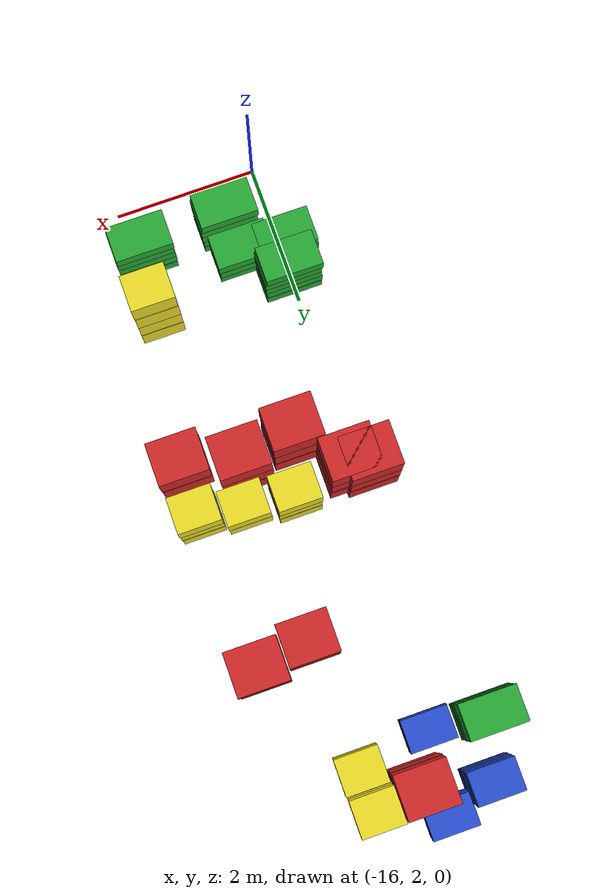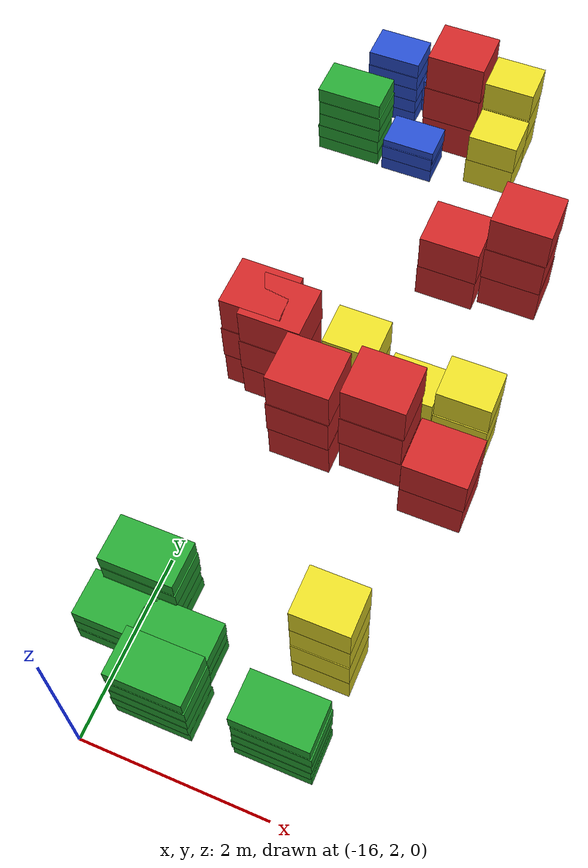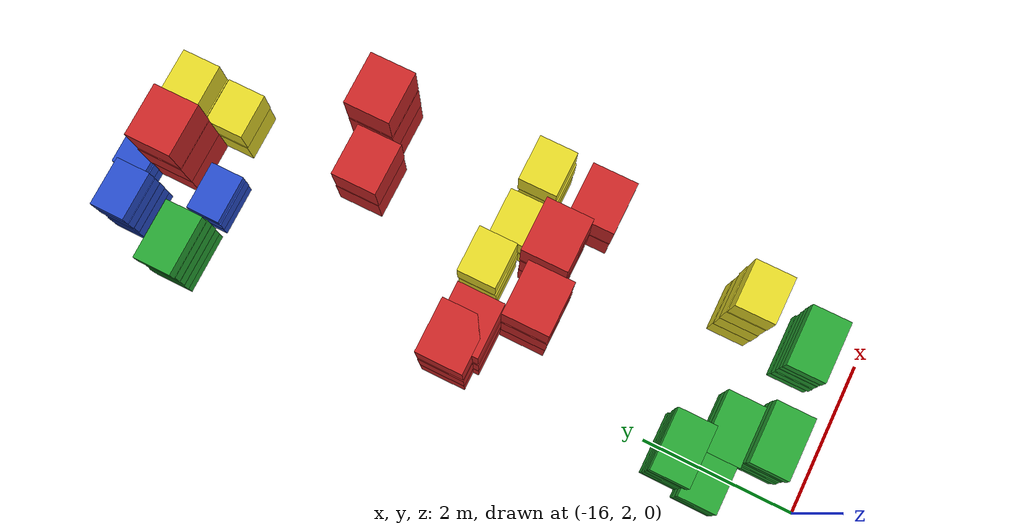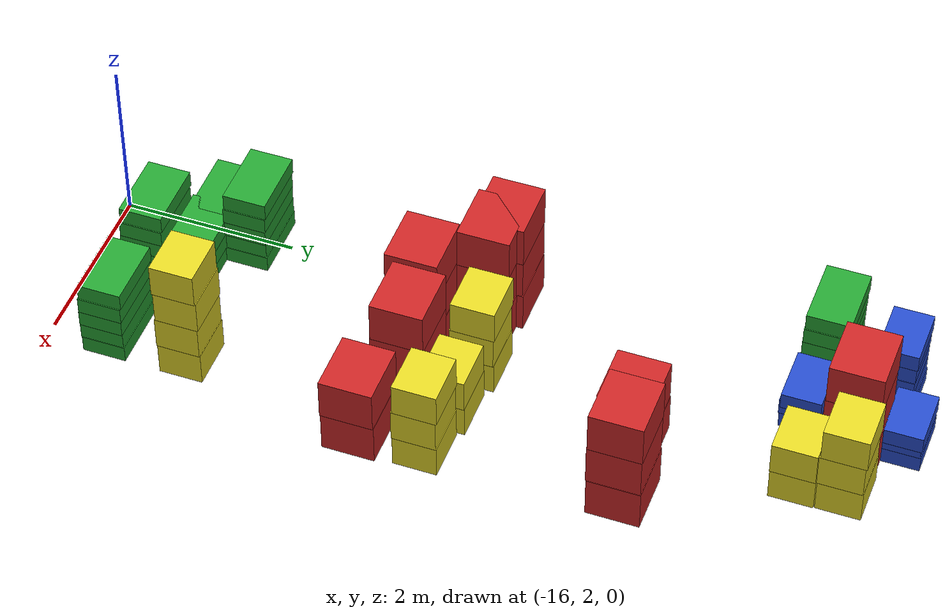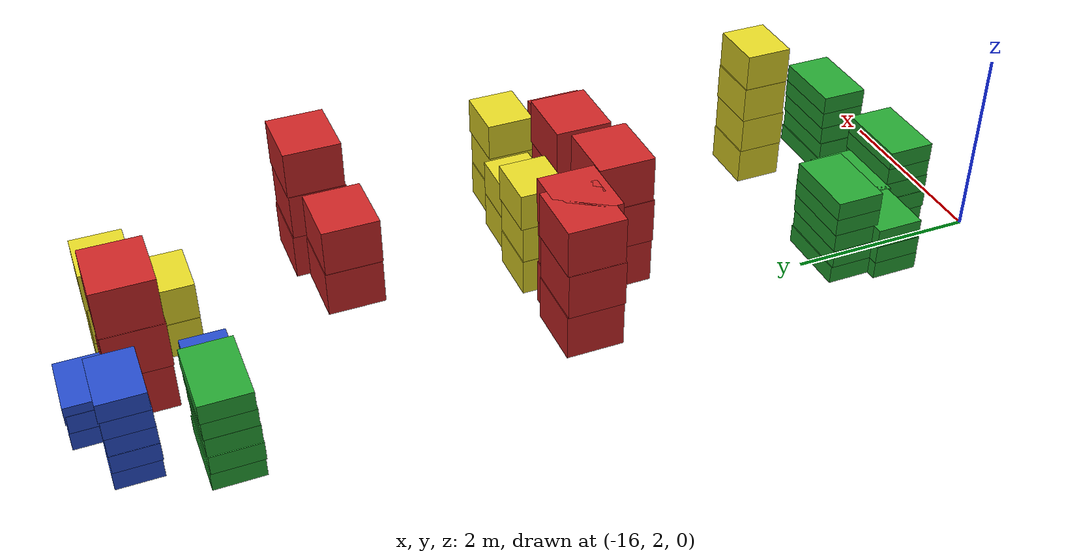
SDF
<sdf version="1.6">
 <world name="default">
  <include><uri>model://sun</uri></include>
  <model name="baggage_D_x5_3">
   <model name="baggage_D_0">
    <static>1</static>
    <link name="link">
     <collision name="collision"><geometry><box><size>0.8 0.5 0.2</size></box></geometry></collision>
     <visual name="visual">
      <geometry><box><size>0.8 0.5 0.2</size></box></geometry>
      <material>
       <script><uri>file://media/materials/scripts/gazebo.material</uri><name>Gazebo/Green</name></script>
      </material>
     </visual>
    </link>
    <pose>0 0 0.1 0 -0 0</pose>
   </model>
   <model name="baggage_D_1">
    <static>1</static>
    <link name="link">
     <collision name="collision"><geometry><box><size>0.8 0.5 0.2</size></box></geometry></collision>
     <visual name="visual">
      <geometry><box><size>0.8 0.5 0.2</size></box></geometry>
      <material>
       <script><uri>file://media/materials/scripts/gazebo.material</uri><name>Gazebo/Green</name></script>
      </material>
     </visual>
    </link>
    <pose>-0.0065 -0.0092 0.3 0 -0 0</pose>
   </model>
   <model name="baggage_D_2">
    <static>1</static>
    <link name="link">
     <collision name="collision"><geometry><box><size>0.8 0.5 0.2</size></box></geometry></collision>
     <visual name="visual">
      <geometry><box><size>0.8 0.5 0.2</size></box></geometry>
      <material>
       <script><uri>file://media/materials/scripts/gazebo.material</uri><name>Gazebo/Green</name></script>
      </material>
     </visual>
    </link>
    <pose>0.005 -0.0052 0.5 0 -0 0</pose>
   </model>
   <model name="baggage_D_3">
    <static>1</static>
    <link name="link">
     <collision name="collision"><geometry><box><size>0.8 0.5 0.2</size></box></geometry></collision>
     <visual name="visual">
      <geometry><box><size>0.8 0.5 0.2</size></box></geometry>
      <material>
       <script><uri>file://media/materials/scripts/gazebo.material</uri><name>Gazebo/Green</name></script>
      </material>
     </visual>
    </link>
    <pose>0.0074 0.0002 0.7 0 -0 0</pose>
   </model>
   <model name="baggage_D_4">
    <static>1</static>
    <link name="link">
     <collision name="collision"><geometry><box><size>0.8 0.5 0.2</size></box></geometry></collision>
     <visual name="visual">
      <geometry><box><size>0.8 0.5 0.2</size></box></geometry>
      <material>
       <script><uri>file://media/materials/scripts/gazebo.material</uri><name>Gazebo/Green</name></script>
      </material>
     </visual>
    </link>
    <pose>-0.006 0.0081 0.9 0 -0 0</pose>
   </model>
   <pose>-14.1762 2.70446 0 0 -0 0</pose>
  </model>
  <model name="baggage_D_x5_5">
   <model name="baggage_D_0">
    <static>1</static>
    <link name="link">
     <collision name="collision"><geometry><box><size>0.8 0.5 0.2</size></box></geometry></collision>
     <visual name="visual">
      <geometry><box><size>0.8 0.5 0.2</size></box></geometry>
      <material>
       <script><uri>file://media/materials/scripts/gazebo.material</uri><name>Gazebo/Green</name></script>
      </material>
     </visual>
    </link>
    <pose>0 0 0.1 0 -0 0</pose>
   </model>
   <model name="baggage_D_1">
    <static>1</static>
    <link name="link">
     <collision name="collision"><geometry><box><size>0.8 0.5 0.2</size></box></geometry></collision>
     <visual name="visual">
      <geometry><box><size>0.8 0.5 0.2</size></box></geometry>
      <material>
       <script><uri>file://media/materials/scripts/gazebo.material</uri><name>Gazebo/Green</name></script>
      </material>
     </visual>
    </link>
    <pose>-0.0065 -0.0092 0.3 0 -0 0</pose>
   </model>
   <model name="baggage_D_2">
    <static>1</static>
    <link name="link">
     <collision name="collision"><geometry><box><size>0.8 0.5 0.2</size></box></geometry></collision>
     <visual name="visual">
      <geometry><box><size>0.8 0.5 0.2</size></box></geometry>
      <material>
       <script><uri>file://media/materials/scripts/gazebo.material</uri><name>Gazebo/Green</name></script>
      </material>
     </visual>
    </link>
    <pose>0.005 -0.0052 0.5 0 -0 0</pose>
   </model>
   <model name="baggage_D_3">
    <static>1</static>
    <link name="link">
     <collision name="collision"><geometry><box><size>0.8 0.5 0.2</size></box></geometry></collision>
     <visual name="visual">
      <geometry><box><size>0.8 0.5 0.2</size></box></geometry>
      <material>
       <script><uri>file://media/materials/scripts/gazebo.material</uri><name>Gazebo/Green</name></script>
      </material>
     </visual>
    </link>
    <pose>0.0074 0.0002 0.7 0 -0 0</pose>
   </model>
   <model name="baggage_D_4">
    <static>1</static>
    <link name="link">
     <collision name="collision"><geometry><box><size>0.8 0.5 0.2</size></box></geometry></collision>
     <visual name="visual">
      <geometry><box><size>0.8 0.5 0.2</size></box></geometry>
      <material>
       <script><uri>file://media/materials/scripts/gazebo.material</uri><name>Gazebo/Green</name></script>
      </material>
     </visual>
    </link>
    <pose>-0.006 0.0081 0.9 0 -0 0</pose>
   </model>
   <pose>-15.399 2.6424 0 0 -0 0</pose>
  </model>
  <model name="baggage_A_x3_7">
   <model name="baggage_A_0">
    <static>1</static>
    <link name="link">
     <collision name="collision"><geometry><box><size>0.7 0.6 0.5</size></box></geometry></collision>
     <visual name="visual">
      <geometry><box><size>0.7 0.6 0.5</size></box></geometry>
      <material>
       <script><uri>file://media/materials/scripts/gazebo.material</uri><name>Gazebo/Red</name></script>
      </material>
     </visual>
    </link>
    <pose>0 0 0.25 0 -0 0</pose>
   </model>
   <model name="baggage_A_1">
    <static>1</static>
    <link name="link">
     <collision name="collision"><geometry><box><size>0.7 0.6 0.5</size></box></geometry></collision>
     <visual name="visual">
      <geometry><box><size>0.7 0.6 0.5</size></box></geometry>
      <material>
       <script><uri>file://media/materials/scripts/gazebo.material</uri><name>Gazebo/Red</name></script>
      </material>
     </visual>
    </link>
    <pose>-0.006 -0.0077 0.75 0 -0 0</pose>
   </model>
   <model name="baggage_A_2">
    <static>1</static>
    <link name="link">
     <collision name="collision"><geometry><box><size>0.7 0.6 0.5</size></box></geometry></collision>
     <visual name="visual">
      <geometry><box><size>0.7 0.6 0.5</size></box></geometry>
      <material>
       <script><uri>file://media/materials/scripts/gazebo.material</uri><name>Gazebo/Red</name></script>
      </material>
     </visual>
    </link>
    <pose>0.0045 0.0005 1.25 0 -0 0</pose>
   </model>
   <pose>-16.0714 6.55606 0 0 -0 0</pose>
  </model>
  <model name="baggage_C_x4_0">
   <model name="baggage_C_0">
    <static>1</static>
    <link name="link">
     <collision name="collision"><geometry><box><size>0.6 0.5 0.4</size></box></geometry></collision>
     <visual name="visual">
      <geometry><box><size>0.6 0.5 0.4</size></box></geometry>
      <material>
       <script><uri>file://media/materials/scripts/gazebo.material</uri><name>Gazebo/Yellow</name></script>
      </material>
     </visual>
    </link>
    <pose>0 0 0.2 0 -0 0</pose>
   </model>
   <model name="baggage_C_1">
    <static>1</static>
    <link name="link">
     <collision name="collision"><geometry><box><size>0.6 0.5 0.4</size></box></geometry></collision>
     <visual name="visual">
      <geometry><box><size>0.6 0.5 0.4</size></box></geometry>
      <material>
       <script><uri>file://media/materials/scripts/gazebo.material</uri><name>Gazebo/Yellow</name></script>
      </material>
     </visual>
    </link>
    <pose>0.0008 -0.0083 0.6 0 -0 0</pose>
   </model>
   <model name="baggage_C_2">
    <static>1</static>
    <link name="link">
     <collision name="collision"><geometry><box><size>0.6 0.5 0.4</size></box></geometry></collision>
     <visual name="visual">
      <geometry><box><size>0.6 0.5 0.4</size></box></geometry>
      <material>
       <script><uri>file://media/materials/scripts/gazebo.material</uri><name>Gazebo/Yellow</name></script>
      </material>
     </visual>
    </link>
    <pose>0.0001 0.0014 1 0 -0 0</pose>
   </model>
   <model name="baggage_C_3">
    <static>1</static>
    <link name="link">
     <collision name="collision"><geometry><box><size>0.6 0.5 0.4</size></box></geometry></collision>
     <visual name="visual">
      <geometry><box><size>0.6 0.5 0.4</size></box></geometry>
      <material>
       <script><uri>file://media/materials/scripts/gazebo.material</uri><name>Gazebo/Yellow</name></script>
      </material>
     </visual>
    </link>
    <pose>0.007 -0.0089 1.4 0 -0 0</pose>
   </model>
   <pose>-14.0724 3.61629 0 0 -0 0</pose>
  </model>
  <model name="baggage_B_x3_4">
   <model name="baggage_B_0">
    <static>1</static>
    <link name="link">
     <collision name="collision"><geometry><box><size>0.65 0.45 0.2</size></box></geometry></collision>
     <visual name="visual">
      <geometry><box><size>0.65 0.45 0.2</size></box></geometry>
      <material>
       <script><uri>file://media/materials/scripts/gazebo.material</uri><name>Gazebo/Blue</name></script>
      </material>
     </visual>
    </link>
    <pose>0 0 0.1 0 -0 0</pose>
   </model>
   <model name="baggage_B_1">
    <static>1</static>
    <link name="link">
     <collision name="collision"><geometry><box><size>0.65 0.45 0.2</size></box></geometry></collision>
     <visual name="visual">
      <geometry><box><size>0.65 0.45 0.2</size></box></geometry>
      <material>
       <script><uri>file://media/materials/scripts/gazebo.material</uri><name>Gazebo/Blue</name></script>
      </material>
     </visual>
    </link>
    <pose>0.0028 -0.0086 0.3 0 -0 0</pose>
   </model>
   <model name="baggage_B_2">
    <static>1</static>
    <link name="link">
     <collision name="collision"><geometry><box><size>0.65 0.45 0.2</size></box></geometry></collision>
     <visual name="visual">
      <geometry><box><size>0.65 0.45 0.2</size></box></geometry>
      <material>
       <script><uri>file://media/materials/scripts/gazebo.material</uri><name>Gazebo/Blue</name></script>
      </material>
     </visual>
    </link>
    <pose>0.0092 0.006 0.4 0 -0 0</pose>
   </model>
   <pose>-15.5356 11.2582 0 0 -0 0</pose>
  </model>
  <model name="baggage_B_x5_10">
   <model name="baggage_B_0">
    <static>1</static>
    <link name="link">
     <collision name="collision"><geometry><box><size>0.65 0.45 0.2</size></box></geometry></collision>
     <visual name="visual">
      <geometry><box><size>0.65 0.45 0.2</size></box></geometry>
      <material>
       <script><uri>file://media/materials/scripts/gazebo.material</uri><name>Gazebo/Blue</name></script>
      </material>
     </visual>
    </link>
    <pose>0 0 0.1 0 -0 0</pose>
   </model>
   <model name="baggage_B_1">
    <static>1</static>
    <link name="link">
     <collision name="collision"><geometry><box><size>0.65 0.45 0.2</size></box></geometry></collision>
     <visual name="visual">
      <geometry><box><size>0.65 0.45 0.2</size></box></geometry>
      <material>
       <script><uri>file://media/materials/scripts/gazebo.material</uri><name>Gazebo/Blue</name></script>
      </material>
     </visual>
    </link>
    <pose>-0.0014 -0.0091 0.3 0 -0 0</pose>
   </model>
   <model name="baggage_B_2">
    <static>1</static>
    <link name="link">
     <collision name="collision"><geometry><box><size>0.65 0.45 0.2</size></box></geometry></collision>
     <visual name="visual">
      <geometry><box><size>0.65 0.45 0.2</size></box></geometry>
      <material>
       <script><uri>file://media/materials/scripts/gazebo.material</uri><name>Gazebo/Blue</name></script>
      </material>
     </visual>
    </link>
    <pose>0.0076 -0.0066 0.5 0 -0 0</pose>
   </model>
   <model name="baggage_B_3">
    <static>1</static>
    <link name="link">
     <collision name="collision"><geometry><box><size>0.65 0.45 0.2</size></box></geometry></collision>
     <visual name="visual">
      <geometry><box><size>0.65 0.45 0.2</size></box></geometry>
      <material>
       <script><uri>file://media/materials/scripts/gazebo.material</uri><name>Gazebo/Blue</name></script>
      </material>
     </visual>
    </link>
    <pose>0 -0.0032 0.7 0 -0 0</pose>
   </model>
   <model name="baggage_B_4">
    <static>1</static>
    <link name="link">
     <collision name="collision"><geometry><box><size>0.65 0.45 0.2</size></box></geometry></collision>
     <visual name="visual">
      <geometry><box><size>0.65 0.45 0.2</size></box></geometry>
      <material>
       <script><uri>file://media/materials/scripts/gazebo.material</uri><name>Gazebo/Blue</name></script>
      </material>
     </visual>
    </link>
    <pose>0.0023 0.0073 0.9 0 -0 0</pose>
   </model>
   <pose>-16.1787 10.9888 0 0 -0 0</pose>
  </model>
  <model name="baggage_B_x3_5">
   <model name="baggage_B_0">
    <static>1</static>
    <link name="link">
     <collision name="collision"><geometry><box><size>0.65 0.45 0.2</size></box></geometry></collision>
     <visual name="visual">
      <geometry><box><size>0.65 0.45 0.2</size></box></geometry>
      <material>
       <script><uri>file://media/materials/scripts/gazebo.material</uri><name>Gazebo/Blue</name></script>
      </material>
     </visual>
    </link>
    <pose>0 0 0.1 0 -0 0</pose>
   </model>
   <model name="baggage_B_1">
    <static>1</static>
    <link name="link">
     <collision name="collision"><geometry><box><size>0.65 0.45 0.2</size></box></geometry></collision>
     <visual name="visual">
      <geometry><box><size>0.65 0.45 0.2</size></box></geometry>
      <material>
       <script><uri>file://media/materials/scripts/gazebo.material</uri><name>Gazebo/Blue</name></script>
      </material>
     </visual>
    </link>
    <pose>0.0028 -0.0086 0.3 0 -0 0</pose>
   </model>
   <model name="baggage_B_2">
    <static>1</static>
    <link name="link">
     <collision name="collision"><geometry><box><size>0.65 0.45 0.2</size></box></geometry></collision>
     <visual name="visual">
      <geometry><box><size>0.65 0.45 0.2</size></box></geometry>
      <material>
       <script><uri>file://media/materials/scripts/gazebo.material</uri><name>Gazebo/Blue</name></script>
      </material>
     </visual>
    </link>
    <pose>0.0092 0.006 0.4 0 -0 0</pose>
   </model>
   <pose>-15.6471 10.12 0 0 -0 0</pose>
  </model>
  <model name="baggage_D_x5_7">
   <model name="baggage_D_0">
    <static>1</static>
    <link name="link">
     <collision name="collision"><geometry><box><size>0.8 0.5 0.2</size></box></geometry></collision>
     <visual name="visual">
      <geometry><box><size>0.8 0.5 0.2</size></box></geometry>
      <material>
       <script><uri>file://media/materials/scripts/gazebo.material</uri><name>Gazebo/Green</name></script>
      </material>
     </visual>
    </link>
    <pose>0 0 0.1 0 -0 0</pose>
   </model>
   <model name="baggage_D_1">
    <static>1</static>
    <link name="link">
     <collision name="collision"><geometry><box><size>0.8 0.5 0.2</size></box></geometry></collision>
     <visual name="visual">
      <geometry><box><size>0.8 0.5 0.2</size></box></geometry>
      <material>
       <script><uri>file://media/materials/scripts/gazebo.material</uri><name>Gazebo/Green</name></script>
      </material>
     </visual>
    </link>
    <pose>-0.0065 -0.0092 0.3 0 -0 0</pose>
   </model>
   <model name="baggage_D_2">
    <static>1</static>
    <link name="link">
     <collision name="collision"><geometry><box><size>0.8 0.5 0.2</size></box></geometry></collision>
     <visual name="visual">
      <geometry><box><size>0.8 0.5 0.2</size></box></geometry>
      <material>
       <script><uri>file://media/materials/scripts/gazebo.material</uri><name>Gazebo/Green</name></script>
      </material>
     </visual>
    </link>
    <pose>0.005 -0.0052 0.5 0 -0 0</pose>
   </model>
   <model name="baggage_D_3">
    <static>1</static>
    <link name="link">
     <collision name="collision"><geometry><box><size>0.8 0.5 0.2</size></box></geometry></collision>
     <visual name="visual">
      <geometry><box><size>0.8 0.5 0.2</size></box></geometry>
      <material>
       <script><uri>file://media/materials/scripts/gazebo.material</uri><name>Gazebo/Green</name></script>
      </material>
     </visual>
    </link>
    <pose>0.0074 0.0002 0.7 0 -0 0</pose>
   </model>
   <model name="baggage_D_4">
    <static>1</static>
    <link name="link">
     <collision name="collision"><geometry><box><size>0.8 0.5 0.2</size></box></geometry></collision>
     <visual name="visual">
      <geometry><box><size>0.8 0.5 0.2</size></box></geometry>
      <material>
       <script><uri>file://media/materials/scripts/gazebo.material</uri><name>Gazebo/Green</name></script>
      </material>
     </visual>
    </link>
    <pose>-0.006 0.0081 0.9 0 -0 0</pose>
   </model>
   <pose>-16.4383 10.1728 0 0 -0 0</pose>
  </model>
  <model name="baggage_A_x3_8">
   <model name="baggage_A_0">
    <static>1</static>
    <link name="link">
     <collision name="collision"><geometry><box><size>0.7 0.6 0.5</size></box></geometry></collision>
     <visual name="visual">
      <geometry><box><size>0.7 0.6 0.5</size></box></geometry>
      <material>
       <script><uri>file://media/materials/scripts/gazebo.material</uri><name>Gazebo/Red</name></script>
      </material>
     </visual>
    </link>
    <pose>0 0 0.25 0 -0 0</pose>
   </model>
   <model name="baggage_A_1">
    <static>1</static>
    <link name="link">
     <collision name="collision"><geometry><box><size>0.7 0.6 0.5</size></box></geometry></collision>
     <visual name="visual">
      <geometry><box><size>0.7 0.6 0.5</size></box></geometry>
      <material>
       <script><uri>file://media/materials/scripts/gazebo.material</uri><name>Gazebo/Red</name></script>
      </material>
     </visual>
    </link>
    <pose>-0.006 -0.0077 0.75 0 -0 0</pose>
   </model>
   <model name="baggage_A_2">
    <static>1</static>
    <link name="link">
     <collision name="collision"><geometry><box><size>0.7 0.6 0.5</size></box></geometry></collision>
     <visual name="visual">
      <geometry><box><size>0.7 0.6 0.5</size></box></geometry>
      <material>
       <script><uri>file://media/materials/scripts/gazebo.material</uri><name>Gazebo/Red</name></script>
      </material>
     </visual>
    </link>
    <pose>0.0045 0.0005 1.25 0 -0 0</pose>
   </model>
   <pose>-15.2946 10.7566 0 0 -0 0</pose>
  </model>
  <model name="baggage_C_x3_5">
   <model name="baggage_C_0">
    <static>1</static>
    <link name="link">
     <collision name="collision"><geometry><box><size>0.6 0.5 0.4</size></box></geometry></collision>
     <visual name="visual">
      <geometry><box><size>0.6 0.5 0.4</size></box></geometry>
      <material>
       <script><uri>file://media/materials/scripts/gazebo.material</uri><name>Gazebo/Yellow</name></script>
      </material>
     </visual>
    </link>
    <pose>0 0 0.2 0 -0 0</pose>
   </model>
   <model name="baggage_C_1">
    <static>1</static>
    <link name="link">
     <collision name="collision"><geometry><box><size>0.6 0.5 0.4</size></box></geometry></collision>
     <visual name="visual">
      <geometry><box><size>0.6 0.5 0.4</size></box></geometry>
      <material>
       <script><uri>file://media/materials/scripts/gazebo.material</uri><name>Gazebo/Yellow</name></script>
      </material>
     </visual>
    </link>
    <pose>0.0062 -0.0069 0.6 0 -0 0</pose>
   </model>
   <model name="baggage_C_2">
    <static>1</static>
    <link name="link">
     <collision name="collision"><geometry><box><size>0.6 0.5 0.4</size></box></geometry></collision>
     <visual name="visual">
      <geometry><box><size>0.6 0.5 0.4</size></box></geometry>
      <material>
       <script><uri>file://media/materials/scripts/gazebo.material</uri><name>Gazebo/Yellow</name></script>
      </material>
     </visual>
    </link>
    <pose>0.0089 0.0083 1 0 -0 0</pose>
   </model>
   <pose>-14.6437 10.8336 0 0 -0 0</pose>
  </model>
  <model name="baggage_C_x2_2">
   <model name="baggage_C_0">
    <static>1</static>
    <link name="link">
     <collision name="collision"><geometry><box><size>0.6 0.5 0.4</size></box></geometry></collision>
     <visual name="visual">
      <geometry><box><size>0.6 0.5 0.4</size></box></geometry>
      <material>
       <script><uri>file://media/materials/scripts/gazebo.material</uri><name>Gazebo/Yellow</name></script>
      </material>
     </visual>
    </link>
    <pose>0 0 0.2 0 -0 0</pose>
   </model>
   <model name="baggage_C_1">
    <static>1</static>
    <link name="link">
     <collision name="collision"><geometry><box><size>0.6 0.5 0.4</size></box></geometry></collision>
     <visual name="visual">
      <geometry><box><size>0.6 0.5 0.4</size></box></geometry>
      <material>
       <script><uri>file://media/materials/scripts/gazebo.material</uri><name>Gazebo/Yellow</name></script>
      </material>
     </visual>
    </link>
    <pose>0.0093 -0.002 0.6 0 -0 0</pose>
   </model>
   <pose>-14.6345 10.3232 0 0 -0 0</pose>
  </model>
  <model name="baggage_A_x2_3">
   <model name="baggage_A_0">
    <static>1</static>
    <link name="link">
     <collision name="collision"><geometry><box><size>0.7 0.6 0.5</size></box></geometry></collision>
     <visual name="visual">
      <geometry><box><size>0.7 0.6 0.5</size></box></geometry>
      <material>
       <script><uri>file://media/materials/scripts/gazebo.material</uri><name>Gazebo/Red</name></script>
      </material>
     </visual>
    </link>
    <pose>0 0 0.25 0 -0 0</pose>
   </model>
   <model name="baggage_A_1">
    <static>1</static>
    <link name="link">
     <collision name="collision"><geometry><box><size>0.7 0.6 0.5</size></box></geometry></collision>
     <visual name="visual">
      <geometry><box><size>0.7 0.6 0.5</size></box></geometry>
      <material>
       <script><uri>file://media/materials/scripts/gazebo.material</uri><name>Gazebo/Red</name></script>
      </material>
     </visual>
    </link>
    <pose>0.0063 -0.0062 0.75 0 -0 0</pose>
   </model>
   <pose>-14.5414 8.51247 0 0 -0 0</pose>
  </model>
  <model name="baggage_A_x3_9">
   <model name="baggage_A_0">
    <static>1</static>
    <link name="link">
     <collision name="collision"><geometry><box><size>0.7 0.6 0.5</size></box></geometry></collision>
     <visual name="visual">
      <geometry><box><size>0.7 0.6 0.5</size></box></geometry>
      <material>
       <script><uri>file://media/materials/scripts/gazebo.material</uri><name>Gazebo/Red</name></script>
      </material>
     </visual>
    </link>
    <pose>0 0 0.25 0 -0 0</pose>
   </model>
   <model name="baggage_A_1">
    <static>1</static>
    <link name="link">
     <collision name="collision"><geometry><box><size>0.7 0.6 0.5</size></box></geometry></collision>
     <visual name="visual">
      <geometry><box><size>0.7 0.6 0.5</size></box></geometry>
      <material>
       <script><uri>file://media/materials/scripts/gazebo.material</uri><name>Gazebo/Red</name></script>
      </material>
     </visual>
    </link>
    <pose>-0.006 -0.0077 0.75 0 -0 0</pose>
   </model>
   <model name="baggage_A_2">
    <static>1</static>
    <link name="link">
     <collision name="collision"><geometry><box><size>0.7 0.6 0.5</size></box></geometry></collision>
     <visual name="visual">
      <geometry><box><size>0.7 0.6 0.5</size></box></geometry>
      <material>
       <script><uri>file://media/materials/scripts/gazebo.material</uri><name>Gazebo/Red</name></script>
      </material>
     </visual>
    </link>
    <pose>0.0045 0.0005 1.25 0 -0 0</pose>
   </model>
   <pose>-13.8096 8.64829 0 0 -0 0</pose>
  </model>
  <model name="baggage_A_x3_10">
   <model name="baggage_A_0">
    <static>1</static>
    <link name="link">
     <collision name="collision"><geometry><box><size>0.7 0.6 0.5</size></box></geometry></collision>
     <visual name="visual">
      <geometry><box><size>0.7 0.6 0.5</size></box></geometry>
      <material>
       <script><uri>file://media/materials/scripts/gazebo.material</uri><name>Gazebo/Red</name></script>
      </material>
     </visual>
    </link>
    <pose>0 0 0.25 0 -0 0</pose>
   </model>
   <model name="baggage_A_1">
    <static>1</static>
    <link name="link">
     <collision name="collision"><geometry><box><size>0.7 0.6 0.5</size></box></geometry></collision>
     <visual name="visual">
      <geometry><box><size>0.7 0.6 0.5</size></box></geometry>
      <material>
       <script><uri>file://media/materials/scripts/gazebo.material</uri><name>Gazebo/Red</name></script>
      </material>
     </visual>
    </link>
    <pose>-0.006 -0.0077 0.75 0 -0 0</pose>
   </model>
   <model name="baggage_A_2">
    <static>1</static>
    <link name="link">
     <collision name="collision"><geometry><box><size>0.7 0.6 0.5</size></box></geometry></collision>
     <visual name="visual">
      <geometry><box><size>0.7 0.6 0.5</size></box></geometry>
      <material>
       <script><uri>file://media/materials/scripts/gazebo.material</uri><name>Gazebo/Red</name></script>
      </material>
     </visual>
    </link>
    <pose>0.0045 0.0005 1.25 0 -0 0</pose>
   </model>
   <pose>-15.2514 5.87077 0 0 -0 0</pose>
  </model>
  <model name="baggage_A_x3_11">
   <model name="baggage_A_0">
    <static>1</static>
    <link name="link">
     <collision name="collision"><geometry><box><size>0.7 0.6 0.5</size></box></geometry></collision>
     <visual name="visual">
      <geometry><box><size>0.7 0.6 0.5</size></box></geometry>
      <material>
       <script><uri>file://media/materials/scripts/gazebo.material</uri><name>Gazebo/Red</name></script>
      </material>
     </visual>
    </link>
    <pose>0 0 0.25 0 -0 0</pose>
   </model>
   <model name="baggage_A_1">
    <static>1</static>
    <link name="link">
     <collision name="collision"><geometry><box><size>0.7 0.6 0.5</size></box></geometry></collision>
     <visual name="visual">
      <geometry><box><size>0.7 0.6 0.5</size></box></geometry>
      <material>
       <script><uri>file://media/materials/scripts/gazebo.material</uri><name>Gazebo/Red</name></script>
      </material>
     </visual>
    </link>
    <pose>-0.006 -0.0077 0.75 0 -0 0</pose>
   </model>
   <model name="baggage_A_2">
    <static>1</static>
    <link name="link">
     <collision name="collision"><geometry><box><size>0.7 0.6 0.5</size></box></geometry></collision>
     <visual name="visual">
      <geometry><box><size>0.7 0.6 0.5</size></box></geometry>
      <material>
       <script><uri>file://media/materials/scripts/gazebo.material</uri><name>Gazebo/Red</name></script>
      </material>
     </visual>
    </link>
    <pose>0.0045 0.0005 1.25 0 -0 0</pose>
   </model>
   <pose>-14.486 5.99908 0 0 -0 0</pose>
  </model>
  <model name="baggage_A_x2_5">
   <model name="baggage_A_0">
    <static>1</static>
    <link name="link">
     <collision name="collision"><geometry><box><size>0.7 0.6 0.5</size></box></geometry></collision>
     <visual name="visual">
      <geometry><box><size>0.7 0.6 0.5</size></box></geometry>
      <material>
       <script><uri>file://media/materials/scripts/gazebo.material</uri><name>Gazebo/Red</name></script>
      </material>
     </visual>
    </link>
    <pose>0 0 0.25 0 -0 0</pose>
   </model>
   <model name="baggage_A_1">
    <static>1</static>
    <link name="link">
     <collision name="collision"><geometry><box><size>0.7 0.6 0.5</size></box></geometry></collision>
     <visual name="visual">
      <geometry><box><size>0.7 0.6 0.5</size></box></geometry>
      <material>
       <script><uri>file://media/materials/scripts/gazebo.material</uri><name>Gazebo/Red</name></script>
      </material>
     </visual>
    </link>
    <pose>0.0063 -0.0062 0.75 0 -0 0</pose>
   </model>
   <pose>-13.7115 5.72892 0 0 -0 0</pose>
  </model>
  <model name="baggage_D_x3_5">
   <model name="baggage_D_0">
    <static>1</static>
    <link name="link">
     <collision name="collision"><geometry><box><size>0.8 0.5 0.2</size></box></geometry></collision>
     <visual name="visual">
      <geometry><box><size>0.8 0.5 0.2</size></box></geometry>
      <material>
       <script><uri>file://media/materials/scripts/gazebo.material</uri><name>Gazebo/Green</name></script>
      </material>
     </visual>
    </link>
    <pose>0 0 0.1 0 -0 0</pose>
   </model>
   <model name="baggage_D_1">
    <static>1</static>
    <link name="link">
     <collision name="collision"><geometry><box><size>0.8 0.5 0.2</size></box></geometry></collision>
     <visual name="visual">
      <geometry><box><size>0.8 0.5 0.2</size></box></geometry>
      <material>
       <script><uri>file://media/materials/scripts/gazebo.material</uri><name>Gazebo/Green</name></script>
      </material>
     </visual>
    </link>
    <pose>-0.0056 0.0083 0.3 0 -0 0</pose>
   </model>
   <model name="baggage_D_2">
    <static>1</static>
    <link name="link">
     <collision name="collision"><geometry><box><size>0.8 0.5 0.2</size></box></geometry></collision>
     <visual name="visual">
      <geometry><box><size>0.8 0.5 0.2</size></box></geometry>
      <material>
       <script><uri>file://media/materials/scripts/gazebo.material</uri><name>Gazebo/Green</name></script>
      </material>
     </visual>
    </link>
    <pose>0.0053 0.0057 0.5 0 -0 0</pose>
   </model>
   <pose>-16.0868 3.16804 0 0 -0 0</pose>
  </model>
  <model name="baggage_D_x3_6">
   <model name="baggage_D_0">
    <static>1</static>
    <link name="link">
     <collision name="collision"><geometry><box><size>0.8 0.5 0.2</size></box></geometry></collision>
     <visual name="visual">
      <geometry><box><size>0.8 0.5 0.2</size></box></geometry>
      <material>
       <script><uri>file://media/materials/scripts/gazebo.material</uri><name>Gazebo/Green</name></script>
      </material>
     </visual>
    </link>
    <pose>0 0 0.1 0 -0 0</pose>
   </model>
   <model name="baggage_D_1">
    <static>1</static>
    <link name="link">
     <collision name="collision"><geometry><box><size>0.8 0.5 0.2</size></box></geometry></collision>
     <visual name="visual">
      <geometry><box><size>0.8 0.5 0.2</size></box></geometry>
      <material>
       <script><uri>file://media/materials/scripts/gazebo.material</uri><name>Gazebo/Green</name></script>
      </material>
     </visual>
    </link>
    <pose>-0.0056 0.0083 0.3 0 -0 0</pose>
   </model>
   <model name="baggage_D_2">
    <static>1</static>
    <link name="link">
     <collision name="collision"><geometry><box><size>0.8 0.5 0.2</size></box></geometry></collision>
     <visual name="visual">
      <geometry><box><size>0.8 0.5 0.2</size></box></geometry>
      <material>
       <script><uri>file://media/materials/scripts/gazebo.material</uri><name>Gazebo/Green</name></script>
      </material>
     </visual>
    </link>
    <pose>0.0053 0.0057 0.5 0 -0 0</pose>
   </model>
   <pose>-15.4684 3.13344 0 0 -0 0</pose>
  </model>
  <model name="baggage_D_x5_11">
   <model name="baggage_D_0">
    <static>1</static>
    <link name="link">
     <collision name="collision"><geometry><box><size>0.8 0.5 0.2</size></box></geometry></collision>
     <visual name="visual">
      <geometry><box><size>0.8 0.5 0.2</size></box></geometry>
      <material>
       <script><uri>file://media/materials/scripts/gazebo.material</uri><name>Gazebo/Green</name></script>
      </material>
     </visual>
    </link>
    <pose>0 0 0.1 0 -0 0</pose>
   </model>
   <model name="baggage_D_1">
    <static>1</static>
    <link name="link">
     <collision name="collision"><geometry><box><size>0.8 0.5 0.2</size></box></geometry></collision>
     <visual name="visual">
      <geometry><box><size>0.8 0.5 0.2</size></box></geometry>
      <material>
       <script><uri>file://media/materials/scripts/gazebo.material</uri><name>Gazebo/Green</name></script>
      </material>
     </visual>
    </link>
    <pose>-0.0065 -0.0092 0.3 0 -0 0</pose>
   </model>
   <model name="baggage_D_2">
    <static>1</static>
    <link name="link">
     <collision name="collision"><geometry><box><size>0.8 0.5 0.2</size></box></geometry></collision>
     <visual name="visual">
      <geometry><box><size>0.8 0.5 0.2</size></box></geometry>
      <material>
       <script><uri>file://media/materials/scripts/gazebo.material</uri><name>Gazebo/Green</name></script>
      </material>
     </visual>
    </link>
    <pose>0.005 -0.0052 0.5 0 -0 0</pose>
   </model>
   <model name="baggage_D_3">
    <static>1</static>
    <link name="link">
     <collision name="collision"><geometry><box><size>0.8 0.5 0.2</size></box></geometry></collision>
     <visual name="visual">
      <geometry><box><size>0.8 0.5 0.2</size></box></geometry>
      <material>
       <script><uri>file://media/materials/scripts/gazebo.material</uri><name>Gazebo/Green</name></script>
      </material>
     </visual>
    </link>
    <pose>0.0074 0.0002 0.7 0 -0 0</pose>
   </model>
   <model name="baggage_D_4">
    <static>1</static>
    <link name="link">
     <collision name="collision"><geometry><box><size>0.8 0.5 0.2</size></box></geometry></collision>
     <visual name="visual">
      <geometry><box><size>0.8 0.5 0.2</size></box></geometry>
      <material>
       <script><uri>file://media/materials/scripts/gazebo.material</uri><name>Gazebo/Green</name></script>
      </material>
     </visual>
    </link>
    <pose>-0.006 0.0081 0.9 0 -0 0</pose>
   </model>
   <pose>-15.9791 3.62983 0 0 -0 0</pose>
  </model>
  <model name="baggage_A_x3_13">
   <model name="baggage_A_0">
    <static>1</static>
    <link name="link">
     <collision name="collision"><geometry><box><size>0.7 0.6 0.5</size></box></geometry></collision>
     <visual name="visual">
      <geometry><box><size>0.7 0.6 0.5</size></box></geometry>
      <material>
       <script><uri>file://media/materials/scripts/gazebo.material</uri><name>Gazebo/Red</name></script>
      </material>
     </visual>
    </link>
    <pose>0 0 0.25 0 -0 0</pose>
   </model>
   <model name="baggage_A_1">
    <static>1</static>
    <link name="link">
     <collision name="collision"><geometry><box><size>0.7 0.6 0.5</size></box></geometry></collision>
     <visual name="visual">
      <geometry><box><size>0.7 0.6 0.5</size></box></geometry>
      <material>
       <script><uri>file://media/materials/scripts/gazebo.material</uri><name>Gazebo/Red</name></script>
      </material>
     </visual>
    </link>
    <pose>-0.006 -0.0077 0.75 0 -0 0</pose>
   </model>
   <model name="baggage_A_2">
    <static>1</static>
    <link name="link">
     <collision name="collision"><geometry><box><size>0.7 0.6 0.5</size></box></geometry></collision>
     <visual name="visual">
      <geometry><box><size>0.7 0.6 0.5</size></box></geometry>
      <material>
       <script><uri>file://media/materials/scripts/gazebo.material</uri><name>Gazebo/Red</name></script>
      </material>
     </visual>
    </link>
    <pose>0.0045 0.0005 1.25 0 -0 0</pose>
   </model>
   <pose>-15.8293 6.48032 0 0 -0 0</pose>
  </model>
  <model name="baggage_C_x3_9">
   <model name="baggage_C_0">
    <static>1</static>
    <link name="link">
     <collision name="collision"><geometry><box><size>0.6 0.5 0.4</size></box></geometry></collision>
     <visual name="visual">
      <geometry><box><size>0.6 0.5 0.4</size></box></geometry>
      <material>
       <script><uri>file://media/materials/scripts/gazebo.material</uri><name>Gazebo/Yellow</name></script>
      </material>
     </visual>
    </link>
    <pose>0 0 0.2 0 -0 0</pose>
   </model>
   <model name="baggage_C_1">
    <static>1</static>
    <link name="link">
     <collision name="collision"><geometry><box><size>0.6 0.5 0.4</size></box></geometry></collision>
     <visual name="visual">
      <geometry><box><size>0.6 0.5 0.4</size></box></geometry>
      <material>
       <script><uri>file://media/materials/scripts/gazebo.material</uri><name>Gazebo/Yellow</name></script>
      </material>
     </visual>
    </link>
    <pose>0.0062 -0.0069 0.6 0 -0 0</pose>
   </model>
   <model name="baggage_C_2">
    <static>1</static>
    <link name="link">
     <collision name="collision"><geometry><box><size>0.6 0.5 0.4</size></box></geometry></collision>
     <visual name="visual">
      <geometry><box><size>0.6 0.5 0.4</size></box></geometry>
      <material>
       <script><uri>file://media/materials/scripts/gazebo.material</uri><name>Gazebo/Yellow</name></script>
      </material>
     </visual>
    </link>
    <pose>0.0089 0.0083 1 0 -0 0</pose>
   </model>
   <pose>-15.0236 6.62739 0 0 -0 0</pose>
  </model>
  <model name="baggage_C_x2_6">
   <model name="baggage_C_0">
    <static>1</static>
    <link name="link">
     <collision name="collision"><geometry><box><size>0.6 0.5 0.4</size></box></geometry></collision>
     <visual name="visual">
      <geometry><box><size>0.6 0.5 0.4</size></box></geometry>
      <material>
       <script><uri>file://media/materials/scripts/gazebo.material</uri><name>Gazebo/Yellow</name></script>
      </material>
     </visual>
    </link>
    <pose>0 0 0.2 0 -0 0</pose>
   </model>
   <model name="baggage_C_1">
    <static>1</static>
    <link name="link">
     <collision name="collision"><geometry><box><size>0.6 0.5 0.4</size></box></geometry></collision>
     <visual name="visual">
      <geometry><box><size>0.6 0.5 0.4</size></box></geometry>
      <material>
       <script><uri>file://media/materials/scripts/gazebo.material</uri><name>Gazebo/Yellow</name></script>
      </material>
     </visual>
    </link>
    <pose>0.0093 -0.002 0.6 0 -0 0</pose>
   </model>
   <pose>-14.3387 6.54913 0 0 -0 0</pose>
  </model>
  <model name="baggage_C_x3_10">
   <model name="baggage_C_0">
    <static>1</static>
    <link name="link">
     <collision name="collision"><geometry><box><size>0.6 0.5 0.4</size></box></geometry></collision>
     <visual name="visual">
      <geometry><box><size>0.6 0.5 0.4</size></box></geometry>
      <material>
       <script><uri>file://media/materials/scripts/gazebo.material</uri><name>Gazebo/Yellow</name></script>
      </material>
     </visual>
    </link>
    <pose>0 0 0.2 0 -0 0</pose>
   </model>
   <model name="baggage_C_1">
    <static>1</static>
    <link name="link">
     <collision name="collision"><geometry><box><size>0.6 0.5 0.4</size></box></geometry></collision>
     <visual name="visual">
      <geometry><box><size>0.6 0.5 0.4</size></box></geometry>
      <material>
       <script><uri>file://media/materials/scripts/gazebo.material</uri><name>Gazebo/Yellow</name></script>
      </material>
     </visual>
    </link>
    <pose>0.0062 -0.0069 0.6 0 -0 0</pose>
   </model>
   <model name="baggage_C_2">
    <static>1</static>
    <link name="link">
     <collision name="collision"><geometry><box><size>0.6 0.5 0.4</size></box></geometry></collision>
     <visual name="visual">
      <geometry><box><size>0.6 0.5 0.4</size></box></geometry>
      <material>
       <script><uri>file://media/materials/scripts/gazebo.material</uri><name>Gazebo/Yellow</name></script>
      </material>
     </visual>
    </link>
    <pose>0.0089 0.0083 1 0 -0 0</pose>
   </model>
   <pose>-13.7053 6.46809 0 0 -0 0</pose>
  </model>
 </world>
</sdf>
